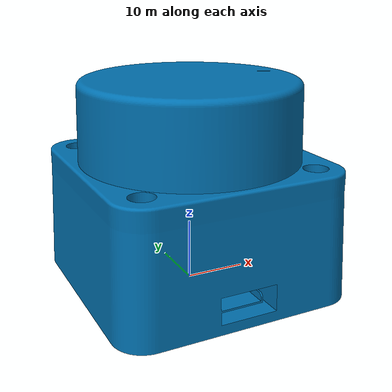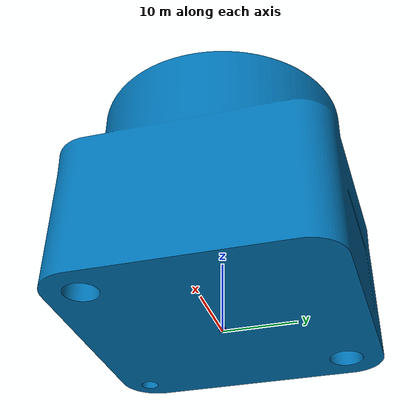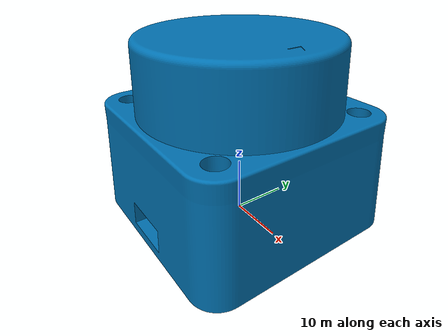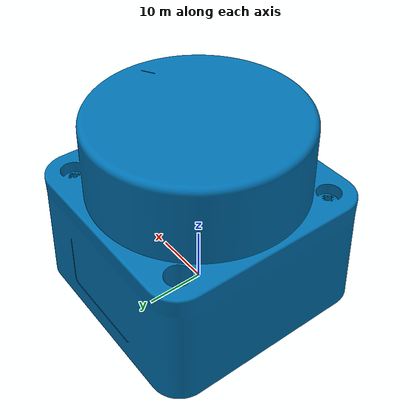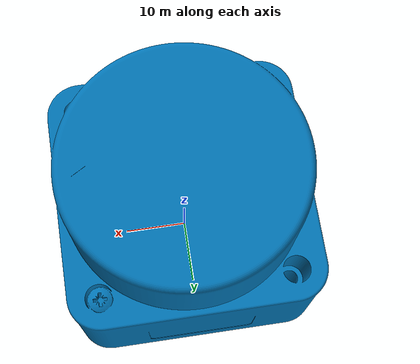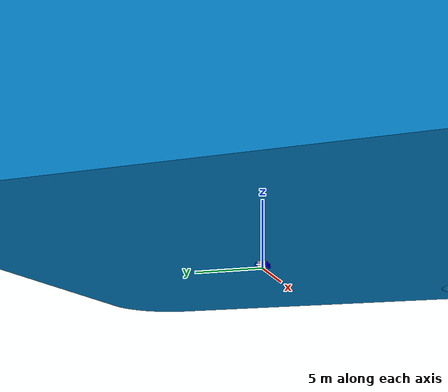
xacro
<?xml version="1.0"?>
<robot xmlns:xacro="http://www.ros.org/wiki/xacro"  name="robot">

    <xacro:arg name="sim_mode" default="true"/>

    <xacro:include filename="materials.xacro" />
    <xacro:include filename="inertia.xacro" />
    <xacro:include filename="robot_core.xacro" />
    <xacro:include filename="camera.xacro" />
    <xacro:include filename="water_tank.xacro" />
    <xacro:include filename="ros2_control.xacro" />
    <xacro:include filename="imu.xacro" />
    <xacro:include filename="lidar.xacro" />
</robot>

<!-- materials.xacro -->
<robot xmlns:xacro="http://www.ros.org/wiki/xacro" >
    <!-- define colors -->
    <material name="white">
        <color rgba="1 1 1 1" />
    </material>
    <material name="yellow">
        <color rgba="1 1 0 1"/>
    </material>

    <material name="blue">
        <color rgba="${0/255} ${0/255} ${255/255} 1.0"/>
    </material>

    <material name="grey">
        <color rgba="0.5 0.5 0.5 1" />
    </material>

    <material name="black">
        <color rgba="0 0 0 1" />
    </material>

    <!-- define gazebo materials -->
    <material name="gazebo_white">
        <color rgba="1 1 1 1" />
        <ambient>1 1 1 1</ambient>
        <diffuse>1 1 1 1</diffuse>
        <specular>.1 .1 .1 128</specular>
    </material>

    <material name="gazebo_blue">
        <color rgba="${0/255} ${0/255} ${255/255} 1.0"/>
        <ambient>0 0 1</ambient>
        <diffuse>0 0 1</diffuse>
        <specular>0.1 0.1 0.1 1 1</specular>
    </material>

    <material name="gazebo_grey">
        <color rgba="0.5 0.5 0.5 1" />
        <ambient>0.5 0.5 0.5 1</ambient>
        <diffuse>0.5 0.5 0.5 1</diffuse>
        <specular>0.1 0.1 0.1 1</specular>
    </material>

    <material name="gazebo_black">
        <color rgba="0 0 0 1" />
        <ambient>0 0 0 1</ambient>
        <diffuse>0 0 0 1</diffuse>
        <specular>0.1 0.1 0.1 1</specular>
    </material>
</robot>

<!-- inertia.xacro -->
<robot xmlns:xacro="http://www.ros.org/wiki/xacro" >
    <!-- Inertia macro -->
    <xacro:macro name="inertial_box" params="mass x y z *origin">
        <inertial>
            <xacro:insert_block name="origin"/>
            <mass value="${mass}" />
            <inertia ixx="${(1/12) * mass * (y*y+z*z)}" ixy="0.0" ixz="0.0"
                    iyy="${(1/12) * mass * (x*x+z*z)}" iyz="0.0"
                    izz="${(1/12) * mass * (x*x+y*y)}" />
        </inertial>
    </xacro:macro>

    <xacro:macro name="inertial_cylinder" params="mass length radius *origin">
        <inertial>
            <xacro:insert_block name="origin"/>
            <mass value="${mass}" />
            <inertia ixx="${(1/12) * mass * (3*radius*radius + length*length)}" ixy="0.0" ixz="0.0"
                    iyy="${(1/12) * mass * (3*radius*radius + length*length)}" iyz="0.0"
                    izz="${(1/2) * mass * (radius*radius)}" />
        </inertial>
    </xacro:macro>
</robot>

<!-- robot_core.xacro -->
<robot xmlns:xacro="http://www.ros.org/wiki/xacro" >
    <!-- base dimensions -->
    <xacro:property name="base_x_size" value="1.0" />
    <xacro:property name="base_y_size" value="0.65" />
    <xacro:property name="base_z_size" value="0.1" />

    <!-- wheel properties -->
    <xacro:property name="wheel_length" value="0.115" />
    <xacro:property name="wheel_radius" value="0.183" />

    <!-- material density -->
    <xacro:property name="base_density" value="1500.0" />
    <xacro:property name="wheel_density" value="400.0" />

    <!-- base and wheel mass -->
    <xacro:property name="base_mass" value="${base_density*base_x_size*base_y_size*base_z_size}" />
    <xacro:property name="wheel_mass" value="${wheel_density*pi*wheel_radius*wheel_radius*wheel_length}" />

    <!-- base link -->
    <link name="base_link">
    </link>

    <!-- base_footprint link -->
    <link name="base_footprint">
    </link>

    <joint name="base_footprint_joint" type="fixed">
        <origin xyz="0 0 ${wheel_radius}" rpy="0 0 0" />
        <parent link="base_footprint"/>
        <child link="base_link" />
    </joint>

    <!-- chassis -->
    <link name="chassis">
        <visual>
        <geometry>
            <box size="${base_x_size} ${base_y_size} ${base_z_size}"/>
        </geometry>
        <material name="white"/>
        </visual>
        <collision>
        <geometry>
            <box size="${base_x_size} ${base_y_size} ${base_z_size}"/>
        </geometry>
        </collision>
        <xacro:inertial_box mass="${base_mass}" x="${base_x_size}" y="${base_y_size}" z="${base_z_size}">
            <origin xyz="0 0 0" rpy="0 0 0"/>
        </xacro:inertial_box>
    </link>

    <joint name="chassis_joint" type="fixed">
        <parent link="base_link"/>
        <child link="chassis"/>
        <origin xyz="0 0 0"/>
    </joint>

    <gazebo reference="chassis">
        <material name="gazebo_white"/>
    </gazebo>

    <!-- wheels -->
    <xacro:macro name="wheel" params="prefix x_reflect y_reflect">
        <link name="${prefix}_link">
            <visual>
                <geometry>
                    <cylinder length="${wheel_length}" radius="${wheel_radius}" />
                </geometry>
                <material name="blue"/>
            </visual>

            <collision>
                <geometry>
                    <sphere radius="${wheel_radius}" />
                </geometry>
            </collision>
            <xacro:inertial_cylinder mass="${wheel_mass}" length="${wheel_length}" radius="${wheel_radius}">
                <origin xyz="0 0 0" rpy="0 0 0"/>
            </xacro:inertial_cylinder>
        </link>

        <joint name="${prefix}_joint" type="continuous">
            <parent link="base_link"/>
            <child link="${prefix}_link"/>
            <origin xyz="${x_reflect*(base_x_size/4)} ${y_reflect*(base_y_size + wheel_length)/2} 0" rpy="${-1*y_reflect*pi/2} 0 0"/>
            <axis xyz="0 0 ${y_reflect}"/>
        </joint>

        <gazebo reference="${prefix}_link">
            <material name="gazebo_blue"/>
        </gazebo>
    </xacro:macro>

    <xacro:wheel prefix="front_left_wheel" x_reflect="1" y_reflect="1" />
    <xacro:wheel prefix="front_right_wheel" x_reflect="1" y_reflect="-1" />
    <xacro:wheel prefix="rear_left_wheel" x_reflect="-1" y_reflect="1" />
    <xacro:wheel prefix="rear_right_wheel" x_reflect="-1" y_reflect="-1" />

</robot>

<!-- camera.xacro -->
<robot xmlns:xacro="http://www.ros.org/wiki/xacro" >

  <material name="red">
    <color rgba="1 0 0 1"/>
  </material>

  <joint name="camera_joint" type="fixed">
      <parent link="base_link"/>
      <child link="camera_link"/>
      <!-- A temporary mount on the front of the body, until the real camera is chosen -->
      <origin xyz="0.11 0 0.09" rpy="0 0 0"/>
  </joint>

  <link name="camera_link">
      <visual>
          <geometry>
              <box size="0.010 0.03 0.03"/>
          </geometry>
          <material name="red"/>
      </visual>
  </link>

  <joint name="camera_rgb_joint" type="fixed">
      <parent link="camera_link"/>
      <child link="camera_rgb_frame"/>
      <origin xyz="0 0 0" rpy="${-pi/2} 0 ${-pi/2}"/>
  </joint>

  <link name="camera_rgb_frame"></link>

  <gazebo reference="camera_link">
      <material name="gazebo_red"/>

      <sensor name="camera" type="camera">
          <always_on>true</always_on>
          <visualize>true</visualize>
          <update_rate>30</update_rate>
          <topic>$(arg robot_ns)/camera/image_raw</topic>
          <gz_frame_id>camera_rgb_frame</gz_frame_id>
          <camera name="intel_realsense_r200">
            <camera_info_topic>$(arg robot_ns)/camera/camera_info</camera_info_topic>
            <horizontal_fov>1.02974</horizontal_fov>
            <!-- Hide world visuals meant only for the Gazebo GUI (bit 1, see kpi_rover_worlds/common/python/sdf.py) -->
            <visibility_mask>4294967293</visibility_mask>
            <image>
              <width>640</width>
              <height>480</height>
              <format>R8G8B8</format>
            </image>
            <clip>
              <near>0.02</near>
              <far>300</far>
            </clip>
            <noise>
              <type>gaussian</type>
              <mean>0.0</mean>
              <stddev>0.007</stddev>
            </noise>
          </camera>
      </sensor>
  </gazebo>

</robot>

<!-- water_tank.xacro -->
<robot xmlns:xacro="http://www.ros.org/wiki/xacro">
    <xacro:property name="tank_x_size" value="0.6" />
    <xacro:property name="tank_y_size" value="0.6" />
    <xacro:property name="tank_z_size" value="0.25" />
    <xacro:property name="tank_mass" value="100" />

    <xacro:property name="cap_radius" value="0.1" />
    <xacro:property name="cap_height" value="0.025" />

    <link name="water_tank_link">
        <visual>
        <geometry>
            <box size="${tank_x_size} ${tank_y_size} ${tank_z_size}"/>
        </geometry>
        <material name="grey"/>
        </visual>
        <collision>
        <geometry>
            <box size="${tank_x_size} ${tank_y_size} ${tank_z_size}"/>
        </geometry>
        </collision>
        <xacro:inertial_box mass="${tank_mass}" x="${tank_x_size}" y="${tank_y_size}" z="${tank_z_size}">
            <origin xyz="0 0 0" rpy="0 0 0"/>
        </xacro:inertial_box>
    </link>

    <joint name="water_tank_joint" type="fixed">
        <parent link="base_link"/>
        <child link="water_tank_link"/>
        <origin xyz="0 0 ${base_z_size/2 + tank_z_size/2}" rpy="0 0 0"/>
    </joint>

    <gazebo reference="water_tank_link">
        <material name="gazebo_grey"/>
    </gazebo>

    <link name="water_cap_link">
        <visual>
        <geometry>
            <cylinder radius="${cap_radius}" length="${cap_height}"/>
        </geometry>
        <material name="black"/>
        </visual>
        <collision>
        <geometry>
            <cylinder radius="${cap_radius}" length="${cap_height}"/>
        </geometry>
        </collision>
    </link>

    <joint name="water_cap_joint" type="fixed">
        <parent link="water_tank_link"/>
        <child link="water_cap_link"/>
        <origin xyz="${cap_radius + 0.05 - tank_y_size/2} 0 ${tank_z_size/2 + cap_height/2}" rpy="0 0 0"/>
    </joint>

    <gazebo reference="water_cap_link">
        <material name="gazebo_white"/>
    </gazebo>
</robot>

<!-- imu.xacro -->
<robot xmlns:xacro="http://www.ros.org/wiki/xacro" >
    <joint name="imu_joint" type="fixed">
        <parent link="base_link"/>
        <child link="imu_link"/>
        <origin xyz="-0.036 0.039 0.015" rpy="0 0 ${pi/2}"/>
    </joint>

    <link name="imu_link"/>

    <gazebo reference="imu_link">
        <sensor type="imu" name="imu">
            <always_on>1</always_on>
            <visualize>false</visualize>
            <topic>$(arg robot_ns)/imu_broadcaster/imu</topic>
            <gz_frame_id>imu_link</gz_frame_id>
        </sensor>
    </gazebo>
</robot>

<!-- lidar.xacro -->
<robot xmlns:xacro="http://www.ros.org/wiki/xacro" >

    <joint name="laser_joint" type="fixed">
        <parent link="water_tank_link"/>
        <child link="laser_frame"/>
        <origin xyz="0 0 0.08" rpy="0 0 0"/>
    </joint>

    <link name="laser_frame">
        <visual>
            <origin xyz="0.1 0 0.05" rpy="0 0 0"/>
            <geometry>
                <mesh filename = "package://description/meshes/lidar.dae"/>
            </geometry>
        </visual>
        <inertial>
            <mass value="1e-5"/>
            <origin xyz="0.1 0 0.05" rpy="0 0 0"/>
            <inertia
                ixx="1e-6" ixy="0" ixz="0"
                iyy="1e-6" iyz="0"
                izz="1e-6"
            />
        </inertial>
        <collision name='collision'>
            <origin xyz="0.1 0 0.05" rpy="0 0 0"/>
            <geometry>
                <box size=".1 .1 .1"/>
            </geometry>
        </collision>
    </link>

    <gazebo reference="laser_frame">
        <selfCollide>false</selfCollide>
        <mu1 value="0.05" />
        <mu2 value="0.05" />
    </gazebo>

    <gazebo reference="laser_frame">
        <sensor name="gpu_lidar" type="gpu_lidar">
        <update_rate>10</update_rate>
        <topic>scan</topic>
        <gz_frame_id>laser_frame</gz_frame_id>
        <lidar>
            <scan>
            <horizontal>
                <samples>720</samples>
                <!--(max_angle-min_angle)/samples * resolution -->
                <resolution>1</resolution>
                <min_angle>-3.14156</min_angle>
                <max_angle>3.14156</max_angle>
            </horizontal>
            <!-- Dirty hack for fake lidar detections with ogre 1 rendering in VM -->
            </scan>
            <range>
            <min>0.05</min>
            <max>10.0</max>
            <resolution>0.01</resolution>
            </range>
            <noise>
                <type>gaussian</type>
                <mean>0.0</mean>
                <stddev>0.01</stddev>
            </noise>
            <frame_id>laser_frame</frame_id>
        </lidar>
        <always_on>1</always_on>
        <visualize>true</visualize>
        </sensor>
    </gazebo>

</robot>
